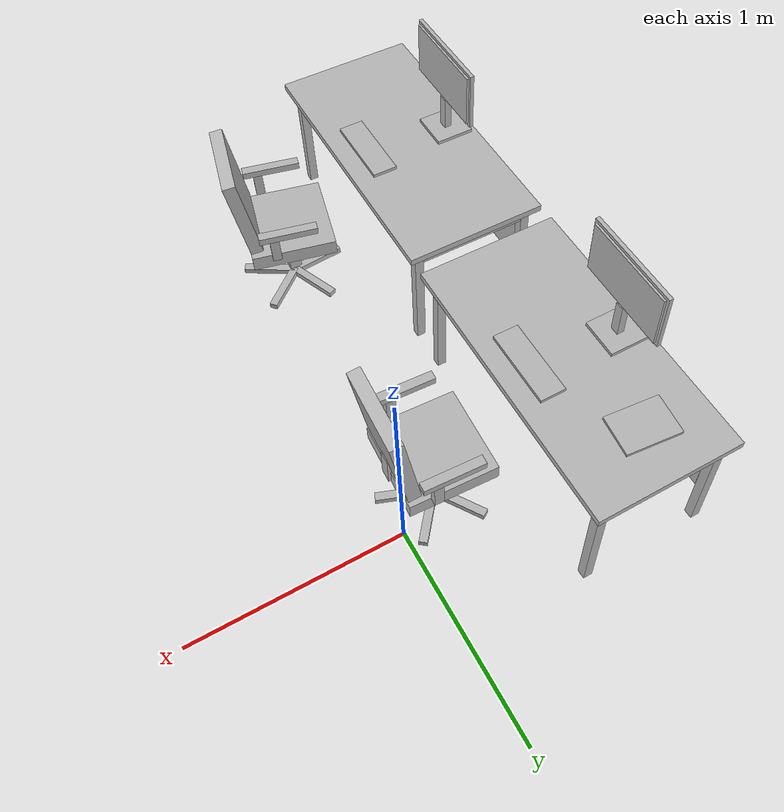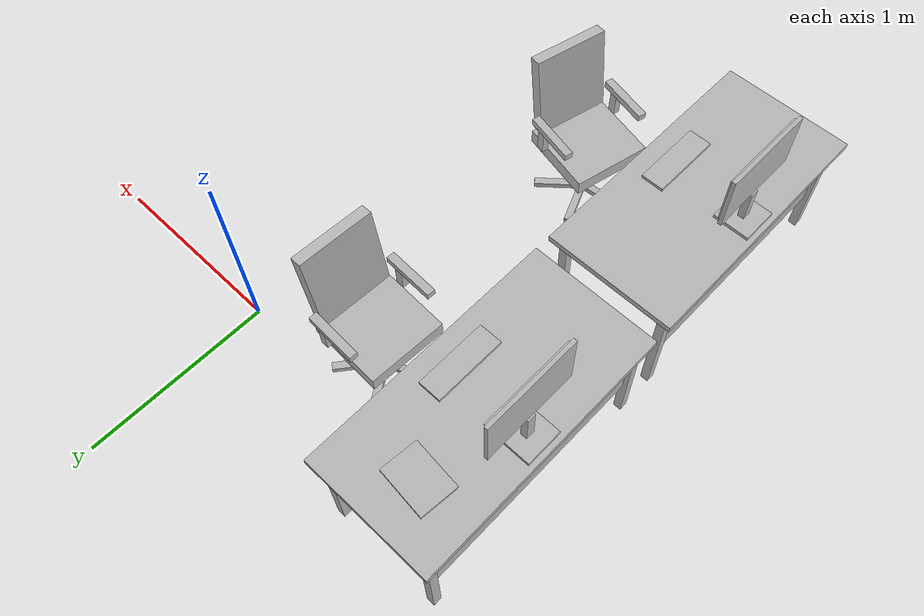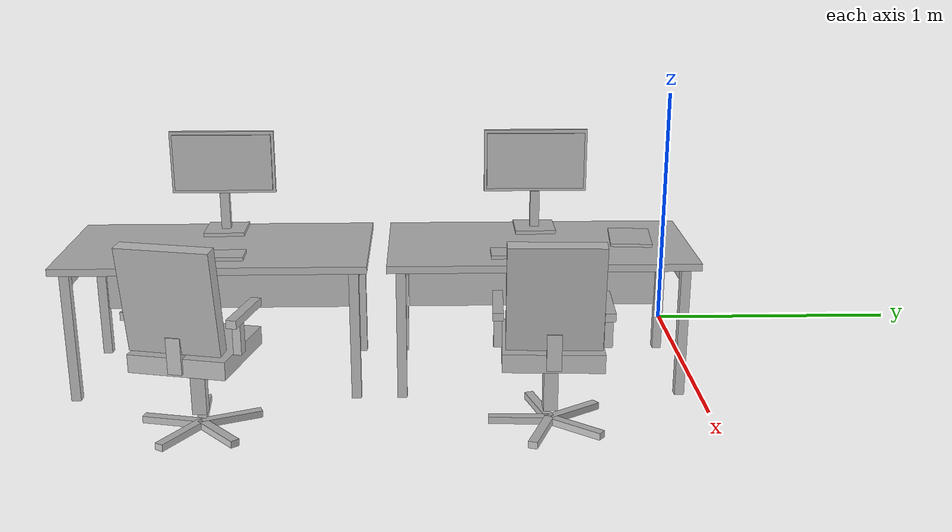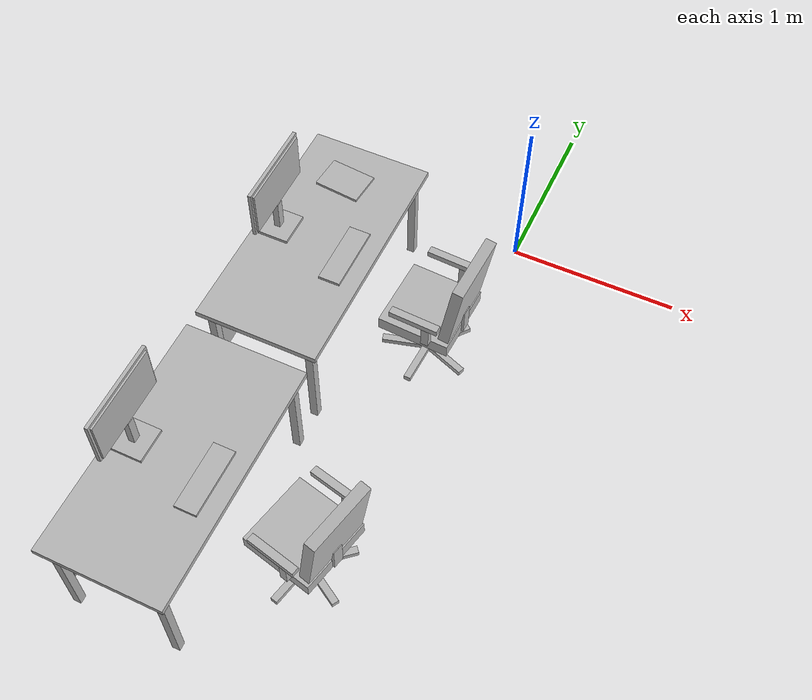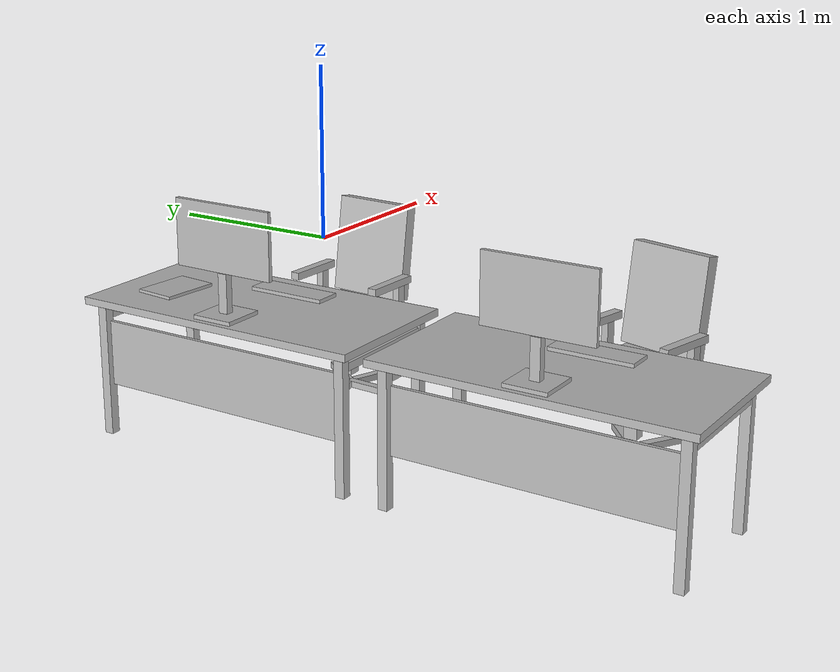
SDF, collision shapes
<sdf version="1.10">
 <model name="office_scene">
  <static>true</static>
  <link name="podC_workstation2">
   <pose>-0.55000 -2.05000 0.00000 0.00000 0.00000 0.00000</pose>
   <visual name="podC_workstation2_visual">
    <geometry><mesh><uri>model://office_scene/meshes/podC_workstation2.glb</uri></mesh></geometry>
   </visual>
   <collision name="podC_workstation2_c0">
    <pose>0.25504 0.16401 -0.07333 0.00000 -0.00000 -1.80111</pose>
    <geometry><box><size>0.0500 0.3200 0.0400</size></box></geometry>
   </collision>
   <collision name="podC_workstation2_c1">
    <pose>0.13633 -0.34226 -0.07333 0.00000 -0.00000 -1.80111</pose>
    <geometry><box><size>0.0500 0.3200 0.0400</size></box></geometry>
   </collision>
   <collision name="podC_workstation2_c2">
    <pose>0.33292 0.14574 -0.16333 0.00000 -0.00000 -1.80111</pose>
    <geometry><box><size>0.0400 0.0500 0.1600</size></box></geometry>
   </collision>
   <collision name="podC_workstation2_c3">
    <pose>0.21422 -0.36053 -0.16333 0.00000 -0.00000 -1.80111</pose>
    <geometry><box><size>0.0400 0.0500 0.1600</size></box></geometry>
   </collision>
   <collision name="podC_workstation2_c4">
    <pose>0.40500 -0.13821 0.04667 -0.13963 -0.00000 -1.80111</pose>
    <geometry><box><size>0.4500 0.0700 0.5200</size></box></geometry>
   </collision>
   <collision name="podC_workstation2_c5">
    <pose>0.39040 -0.13479 -0.22333 0.00000 -0.00000 -1.80111</pose>
    <geometry><box><size>0.0700 0.0600 0.1800</size></box></geometry>
   </collision>
   <collision name="podC_workstation2_c6">
    <pose>0.17621 -0.08456 -0.47333 0.00000 -0.00000 0.00000</pose>
    <geometry><box><size>0.0700 0.0700 0.2800</size></box></geometry>
   </collision>
   <collision name="podC_workstation2_c7">
    <pose>0.17621 -0.08456 -0.28333 0.00000 -0.00000 -1.80111</pose>
    <geometry><box><size>0.4800 0.4700 0.0900</size></box></geometry>
   </collision>
   <collision name="podC_workstation2_c8">
    <pose>0.14197 -0.23060 -0.67333 0.00000 -0.00000 -1.80111</pose>
    <geometry><box><size>0.3000 0.0450 0.0350</size></box></geometry>
   </collision>
   <collision name="podC_workstation2_c9">
    <pose>0.30452 -0.16226 -0.67333 0.00000 -0.00000 -0.54447</pose>
    <geometry><box><size>0.3000 0.0450 0.0350</size></box></geometry>
   </collision>
   <collision name="podC_workstation2_c10">
    <pose>0.28975 0.01346 -0.67333 0.00000 -0.00000 0.71216</pose>
    <geometry><box><size>0.3000 0.0450 0.0350</size></box></geometry>
   </collision>
   <collision name="podC_workstation2_c11">
    <pose>0.11807 0.05371 -0.67333 0.00000 -0.00000 1.96880</pose>
    <geometry><box><size>0.3000 0.0450 0.0350</size></box></geometry>
   </collision>
   <collision name="podC_workstation2_c12">
    <pose>0.02674 -0.09713 -0.67333 0.00000 -0.00000 -3.05775</pose>
    <geometry><box><size>0.3000 0.0450 0.0350</size></box></geometry>
   </collision>
   <collision name="podC_workstation2_c13">
    <pose>-0.38379 -0.13456 0.00567 0.00000 -0.00000 1.57080</pose>
    <geometry><box><size>0.4300 0.1400 0.0200</size></box></geometry>
   </collision>
   <collision name="podC_workstation2_c14">
    <pose>-0.27379 -0.81456 -0.39333 0.00000 -0.00000 1.57080</pose>
    <geometry><box><size>0.0500 0.0500 0.7000</size></box></geometry>
   </collision>
   <collision name="podC_workstation2_c15">
    <pose>-0.93379 -0.81456 -0.39333 0.00000 -0.00000 1.57080</pose>
    <geometry><box><size>0.0500 0.0500 0.7000</size></box></geometry>
   </collision>
   <collision name="podC_workstation2_c16">
    <pose>-0.27379 0.64544 -0.39333 0.00000 -0.00000 1.57080</pose>
    <geometry><box><size>0.0500 0.0500 0.7000</size></box></geometry>
   </collision>
   <collision name="podC_workstation2_c17">
    <pose>-0.93379 0.64544 -0.39333 0.00000 -0.00000 1.57080</pose>
    <geometry><box><size>0.0500 0.0500 0.7000</size></box></geometry>
   </collision>
   <collision name="podC_workstation2_c18">
    <pose>-0.92379 -0.08456 -0.30333 0.00000 -0.00000 1.57080</pose>
    <geometry><box><size>1.4000 0.0200 0.3400</size></box></geometry>
   </collision>
   <collision name="podC_workstation2_c19">
    <pose>-0.60379 -0.81456 -0.10333 0.00000 -0.00000 1.57080</pose>
    <geometry><box><size>0.0400 0.6600 0.0400</size></box></geometry>
   </collision>
   <collision name="podC_workstation2_c20">
    <pose>-0.60379 0.64544 -0.10333 0.00000 -0.00000 1.57080</pose>
    <geometry><box><size>0.0400 0.6600 0.0400</size></box></geometry>
   </collision>
   <collision name="podC_workstation2_c21">
    <pose>-0.60379 -0.08456 -0.02233 0.00000 -0.00000 1.57080</pose>
    <geometry><box><size>1.6000 0.8000 0.0380</size></box></geometry>
   </collision>
   <collision name="podC_workstation2_c22">
    <pose>-0.86379 -0.08456 0.00667 0.00000 -0.00000 0.00000</pose>
    <geometry><box><size>0.2200 0.2200 0.0200</size></box></geometry>
   </collision>
   <collision name="podC_workstation2_c23">
    <pose>-0.86379 -0.08456 0.11667 0.00000 -0.00000 1.57080</pose>
    <geometry><box><size>0.0500 0.0400 0.2000</size></box></geometry>
   </collision>
   <collision name="podC_workstation2_c24">
    <pose>-0.86379 -0.08456 0.38667 0.00000 -0.00000 1.57080</pose>
    <geometry><box><size>0.5600 0.0220 0.3400</size></box></geometry>
   </collision>
   <collision name="podC_workstation2_c25">
    <pose>-0.84979 -0.08456 0.38667 0.00000 -0.00000 1.57080</pose>
    <geometry><box><size>0.5300 0.0200 0.3050</size></box></geometry>
   </collision>
  </link>
  <link name="podC_workstation3">
   <pose>-0.55000 -0.35000 0.00000 0.00000 0.00000 0.00000</pose>
   <visual name="podC_workstation3_visual">
    <geometry><mesh><uri>model://office_scene/meshes/podC_workstation3.glb</uri></mesh></geometry>
   </visual>
   <collision name="podC_workstation3_c0">
    <pose>0.20816 0.17424 -0.07333 0.00000 -0.00000 -1.61685</pose>
    <geometry><box><size>0.0500 0.3200 0.0400</size></box></geometry>
   </collision>
   <collision name="podC_workstation3_c1">
    <pose>0.18422 -0.34521 -0.07333 0.00000 -0.00000 -1.61685</pose>
    <geometry><box><size>0.0500 0.3200 0.0400</size></box></geometry>
   </collision>
   <collision name="podC_workstation3_c2">
    <pose>0.28807 0.17056 -0.16333 0.00000 -0.00000 -1.61685</pose>
    <geometry><box><size>0.0400 0.0500 0.1600</size></box></geometry>
   </collision>
   <collision name="podC_workstation3_c3">
    <pose>0.26414 -0.34889 -0.16333 0.00000 -0.00000 -1.61685</pose>
    <geometry><box><size>0.0400 0.0500 0.1600</size></box></geometry>
   </collision>
   <collision name="podC_workstation3_c4">
    <pose>0.41096 -0.09538 0.04667 -0.13963 -0.00000 -1.61685</pose>
    <geometry><box><size>0.4500 0.0700 0.5200</size></box></geometry>
   </collision>
   <collision name="podC_workstation3_c5">
    <pose>0.39598 -0.09469 -0.22333 0.00000 -0.00000 -1.61685</pose>
    <geometry><box><size>0.0700 0.0600 0.1800</size></box></geometry>
   </collision>
   <collision name="podC_workstation3_c6">
    <pose>0.17621 -0.08456 -0.47333 0.00000 -0.00000 0.00000</pose>
    <geometry><box><size>0.0700 0.0700 0.2800</size></box></geometry>
   </collision>
   <collision name="podC_workstation3_c7">
    <pose>0.17621 -0.08456 -0.28333 0.00000 -0.00000 -1.61685</pose>
    <geometry><box><size>0.4800 0.4700 0.0900</size></box></geometry>
   </collision>
   <collision name="podC_workstation3_c8">
    <pose>0.16931 -0.23440 -0.67333 0.00000 -0.00000 -1.61685</pose>
    <geometry><box><size>0.3000 0.0450 0.0350</size></box></geometry>
   </collision>
   <collision name="podC_workstation3_c9">
    <pose>0.31658 -0.13743 -0.67333 0.00000 -0.00000 -0.36021</pose>
    <geometry><box><size>0.3000 0.0450 0.0350</size></box></geometry>
   </collision>
   <collision name="podC_workstation3_c10">
    <pose>0.26987 0.03260 -0.67333 0.00000 -0.00000 0.89643</pose>
    <geometry><box><size>0.3000 0.0450 0.0350</size></box></geometry>
   </collision>
   <collision name="podC_workstation3_c11">
    <pose>0.09372 0.04072 -0.67333 0.00000 -0.00000 2.15307</pose>
    <geometry><box><size>0.3000 0.0450 0.0350</size></box></geometry>
   </collision>
   <collision name="podC_workstation3_c12">
    <pose>0.03157 -0.12430 -0.67333 0.00000 -0.00000 -2.87348</pose>
    <geometry><box><size>0.3000 0.0450 0.0350</size></box></geometry>
   </collision>
   <collision name="podC_workstation3_c13">
    <pose>-0.38379 -0.13456 0.00567 0.00000 -0.00000 1.57080</pose>
    <geometry><box><size>0.4300 0.1400 0.0200</size></box></geometry>
   </collision>
   <collision name="podC_workstation3_c14">
    <pose>-0.65379 0.41544 0.00267 0.00000 -0.00000 1.47688</pose>
    <geometry><box><size>0.2200 0.3000 0.0200</size></box></geometry>
   </collision>
   <collision name="podC_workstation3_c15">
    <pose>-0.27379 -0.81456 -0.39333 0.00000 -0.00000 1.57080</pose>
    <geometry><box><size>0.0500 0.0500 0.7000</size></box></geometry>
   </collision>
   <collision name="podC_workstation3_c16">
    <pose>-0.93379 -0.81456 -0.39333 0.00000 -0.00000 1.57080</pose>
    <geometry><box><size>0.0500 0.0500 0.7000</size></box></geometry>
   </collision>
   <collision name="podC_workstation3_c17">
    <pose>-0.27379 0.64544 -0.39333 0.00000 -0.00000 1.57080</pose>
    <geometry><box><size>0.0500 0.0500 0.7000</size></box></geometry>
   </collision>
   <collision name="podC_workstation3_c18">
    <pose>-0.93379 0.64544 -0.39333 0.00000 -0.00000 1.57080</pose>
    <geometry><box><size>0.0500 0.0500 0.7000</size></box></geometry>
   </collision>
   <collision name="podC_workstation3_c19">
    <pose>-0.92379 -0.08456 -0.30333 0.00000 -0.00000 1.57080</pose>
    <geometry><box><size>1.4000 0.0200 0.3400</size></box></geometry>
   </collision>
   <collision name="podC_workstation3_c20">
    <pose>-0.60379 -0.81456 -0.10333 0.00000 -0.00000 1.57080</pose>
    <geometry><box><size>0.0400 0.6600 0.0400</size></box></geometry>
   </collision>
   <collision name="podC_workstation3_c21">
    <pose>-0.60379 0.64544 -0.10333 0.00000 -0.00000 1.57080</pose>
    <geometry><box><size>0.0400 0.6600 0.0400</size></box></geometry>
   </collision>
   <collision name="podC_workstation3_c22">
    <pose>-0.60379 -0.08456 -0.02233 0.00000 -0.00000 1.57080</pose>
    <geometry><box><size>1.6000 0.8000 0.0380</size></box></geometry>
   </collision>
   <collision name="podC_workstation3_c23">
    <pose>-0.86379 -0.08456 0.00667 0.00000 -0.00000 0.00000</pose>
    <geometry><box><size>0.2200 0.2200 0.0200</size></box></geometry>
   </collision>
   <collision name="podC_workstation3_c24">
    <pose>-0.86379 -0.08456 0.11667 0.00000 -0.00000 1.57080</pose>
    <geometry><box><size>0.0500 0.0400 0.2000</size></box></geometry>
   </collision>
   <collision name="podC_workstation3_c25">
    <pose>-0.86379 -0.08456 0.38667 0.00000 -0.00000 1.57080</pose>
    <geometry><box><size>0.5600 0.0220 0.3400</size></box></geometry>
   </collision>
   <collision name="podC_workstation3_c26">
    <pose>-0.84979 -0.08456 0.38667 0.00000 -0.00000 1.57080</pose>
    <geometry><box><size>0.5300 0.0200 0.3050</size></box></geometry>
   </collision>
  </link>
 </model>
</sdf>
